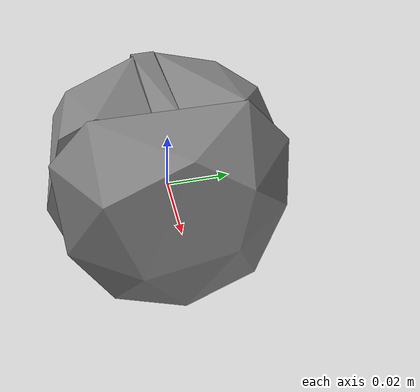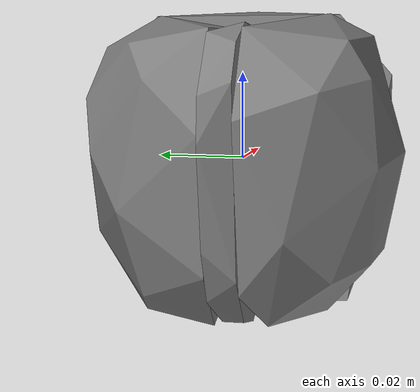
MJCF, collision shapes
<mujoco model="apple">
  <compiler angle="radian" />

  <asset>
    <mesh name="apple_visual_mesh" file="apple/textured.obj" />
    <mesh name="apple_collision_mesh_0" file="apple/textured_coacd_0.stl" />
    <mesh name="apple_collision_mesh_1" file="apple/textured_coacd_1.stl" />
    <mesh name="apple_collision_mesh_2" file="apple/textured_coacd_2.stl" />
    <mesh name="apple_collision_mesh_3" file="apple/textured_coacd_3.stl" />
    <texture name="apple_texture" type="2d" file="apple/texture_map.png" />
    <material name="apple_material" texture="apple_texture" />
  </asset>

  <worldbody>
    <body name="apple" pos="0 0 0" euler="0 0 0">
      <freejoint name="apple_joint" />
      <geom name="apple_visual_geom" type="mesh" mesh="apple_visual_mesh" material="apple_material" pos="-0.0013105802251075094 0.003861242636253375 -0.03633673271131293" euler="0 0 0" contype="0" conaffinity="0" group="0" />
      <geom name="apple_collision_geom_0" type="mesh" mesh="apple_collision_mesh_0" pos="-0.0013105802251075094 0.003861242636253375 -0.03633673271131293" euler="0 0 0" contype="1" conaffinity="1" group="3" />
      <geom name="apple_collision_geom_1" type="mesh" mesh="apple_collision_mesh_1" pos="-0.0013105802251075094 0.003861242636253375 -0.03633673271131293" euler="0 0 0" contype="1" conaffinity="1" group="3" />
      <geom name="apple_collision_geom_2" type="mesh" mesh="apple_collision_mesh_2" pos="-0.0013105802251075094 0.003861242636253375 -0.03633673271131293" euler="0 0 0" contype="1" conaffinity="1" group="3" />
      <geom name="apple_collision_geom_3" type="mesh" mesh="apple_collision_mesh_3" pos="-0.0013105802251075094 0.003861242636253375 -0.03633673271131293" euler="0 0 0" contype="1" conaffinity="1" group="3" />
      <inertial pos="0 0 0" euler="0 0 0" mass="0.068" diaginertia="0.001 0.001 0.001" />
    </body>
  </worldbody>
</mujoco>
